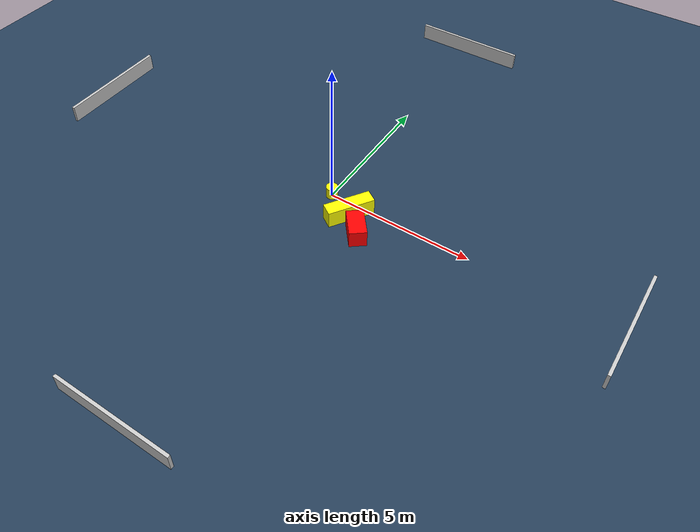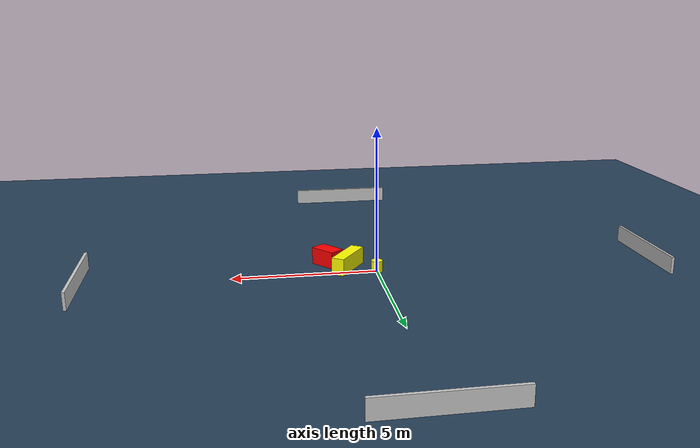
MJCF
<?xml version="1.0" ?>
<mujoco model="generated_environment">
  <option timestep="0.01" integrator="RK4" cone="elliptic"/>
  <default>
    <geom density="1"/>
  </default>
  <asset>
    <texture builtin="gradient" height="3072" name="skybox" rgb1="0.3 0.5 0.7" rgb2="0 0 0" type="skybox" width="512"/>
    <texture builtin="checker" height="300" name="groundplane" rgb1="0.2 0.3 0.4" rgb2="0.1 0.2 0.3" type="2d" width="300"/>
    <material name="groundplane" reflectance="0.2" texrepeat="5 5" texture="groundplane"/>
  </asset>
  <worldbody>
    <light dir="0 0 -1" directional="true" pos="0 0 1.5"/>
    <geom condim="3" friction="0.5 0.005 0.001" material="groundplane" name="floor" pos="0 0 0" size="0 0 0.05" type="plane"/>
    <body name="walls">
      <geom name="wall_1" condim="4" pos="-10.0 0.0 0.3" rgba="0.800000011920929 0.800000011920929 0.800000011920929 1.0" size="0.05 2.0 0.3" type="box"/>
      <geom name="wall_2" condim="4" pos="10.0 0.0 0.3" rgba="0.800000011920929 0.800000011920929 0.800000011920929 1.0" size="0.05 2.0 0.3" type="box"/>
      <geom name="wall_3" condim="4" pos="0.0 -10.0 0.3" rgba="0.800000011920929 0.800000011920929 0.800000011920929 1.0" size="2.0 0.05 0.3" type="box"/>
      <geom name="wall_4" condim="4" pos="0.0 10.0 0.3" rgba="0.800000011920929 0.800000011920929 0.800000011920929 1.0" size="2.0 0.05 0.3" type="box"/>
    </body>
    <body name="robot">
      <joint name="joint_x" type="slide" pos="0 0 0" axis="1 0 0"/>
      <joint name="joint_y" type="slide" pos="0 0 0" axis="0 1 0"/>
      <geom name="robot" type="cylinder" pos="0.0 0.0 0.2" size="0.2 0.2 0.0" mass="5.0" friction="1.0 0.005 0.0001" condim="4" rgba="1.0 1.0 0.0 1.0"/>
    </body>
    <body name="obstacle_1_movable">
      <geom name="obstacle_1_movable" condim="4" pos="0.9606328303819761 -0.46322055659076966 0.3" euler="0 0 146.8375575739477" friction="0.0 0.005 0.001" rgba="1.0 1.0 0.0 1.0" size="0.22793910503738732 0.7986741778427466 0.3" type="box" mass="0.1"/>
      <joint type="free"/>
    </body>
    <body name="obstacle_2_static">
      <geom name="obstacle_2_static" condim="4" pos="1.6043759906205544 -1.036635230938111 0.3" euler="0 0 38.90985744852641" friction="0.0 0.005 0.001" rgba="1.0 0.0 0.0 1.0" size="0.28563630183570987 0.4894511542648215 0.3" type="box"/>
    </body>
  </worldbody>
  <actuator>
    <motor name="actuator_x" joint="joint_x" gear="1" ctrlrange="-1 1"/>
    <motor name="actuator_y" joint="joint_y" gear="1" ctrlrange="-1 1"/>
  </actuator>
</mujoco>
